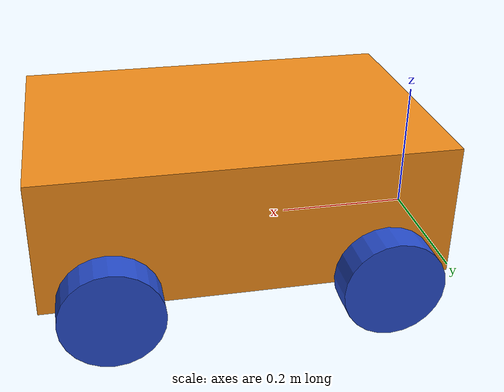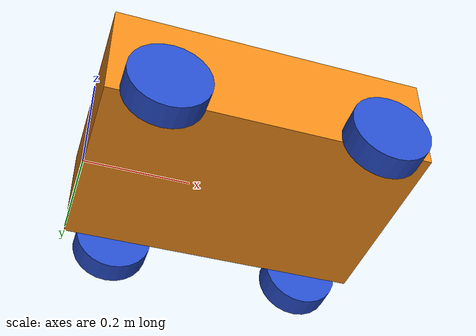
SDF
<sdf version='1.11'>
  <model name='robot'>
    <link name='base_link'>
      <inertial>
        <pose>0.29999999999999999 0 0.090000000000000011 0 0 0</pose>
        <mass>0.5</mass>
        <inertia>
          <ixx>0.008333333333333335</ixx>
          <ixy>0</ixy>
          <ixz>0</ixz>
          <iyy>0.016666666666666659</iyy>
          <iyz>0</iyz>
          <izz>0.021666666666666671</izz>
        </inertia>
      </inertial>
      <collision name='base_link_fixed_joint_lump__chassis_collision'>
        <pose>0.29999999999999999 0 0.090000000000000011 0 0 0</pose>
        <geometry>
          <box>
            <size>0.59999999999999998 0.40000000000000002 0.20000000000000001</size>
          </box>
        </geometry>
        <surface>
          <contact>
            <ode/>
          </contact>
          <friction>
            <ode/>
          </friction>
        </surface>
      </collision>
      <visual name='base_link_fixed_joint_lump__chassis_visual'>
        <pose>0.29999999999999999 0 0.090000000000000011 0 0 0</pose>
        <geometry>
          <box>
            <size>0.59999999999999998 0.40000000000000002 0.20000000000000001</size>
          </box>
        </geometry>
        <material>
          <script>
            <name>Gazebo/Orange</name>
            <uri>file://media/materials/scripts/gazebo.material</uri>
          </script>
          <diffuse>1 0.37500003 0.125 1</diffuse>
          <ambient>1 0.37500003 0.125 1</ambient>
        </material>
      </visual>
    </link>
    <joint name='front_left_wheel_joint' type='revolute'>
      <pose relative_to='base_link'>0.5 0.22500000000000001 0 -1.5707963267948959 0 0</pose>
      <parent>base_link</parent>
      <child>front_left_wheel</child>
      <axis>
        <xyz>0 0 1</xyz>
        <limit>
          <lower>-inf</lower>
          <upper>inf</upper>
        </limit>
        <dynamics>
          <spring_reference>0</spring_reference>
          <spring_stiffness>0</spring_stiffness>
        </dynamics>
      </axis>
    </joint>
    <link name='front_left_wheel'>
      <pose relative_to='front_left_wheel_joint'>0 0 0 0 0 0</pose>
      <inertial>
        <pose>0 0 0 0 0 0</pose>
        <mass>0.050000000000000003</mass>
        <inertia>
          <ixx>8.0729166666666653e-05</ixx>
          <ixy>0</ixy>
          <ixz>0</ixz>
          <iyy>8.0729166666666653e-05</iyy>
          <iyz>0</iyz>
          <izz>0.00014062499999999999</izz>
        </inertia>
      </inertial>
      <collision name='front_left_wheel_collision'>
        <pose>0 0 0 0 0 0</pose>
        <geometry>
          <sphere>
            <radius>0.074999999999999997</radius>
          </sphere>
        </geometry>
        <surface>
          <contact>
            <ode/>
          </contact>
          <friction>
            <ode/>
          </friction>
        </surface>
      </collision>
      <visual name='front_left_wheel_visual'>
        <pose>0 0 0 0 0 0</pose>
        <geometry>
          <cylinder>
            <length>0.050000000000000003</length>
            <radius>0.074999999999999997</radius>
          </cylinder>
        </geometry>
        <material>
          <script>
            <name>Gazebo/Blue</name>
            <uri>file://media/materials/scripts/gazebo.material</uri>
          </script>
          <diffuse>0.25 0.25 1 1</diffuse>
          <ambient>0.25 0.25 1 1</ambient>
        </material>
      </visual>
    </link>
    <joint name='front_right_wheel_joint' type='revolute'>
      <pose relative_to='base_link'>0.5 -0.22500000000000001 0 1.5707963267948959 0 0</pose>
      <parent>base_link</parent>
      <child>front_right_wheel</child>
      <axis>
        <xyz>0 0 1</xyz>
        <limit>
          <lower>-inf</lower>
          <upper>inf</upper>
        </limit>
        <dynamics>
          <spring_reference>0</spring_reference>
          <spring_stiffness>0</spring_stiffness>
        </dynamics>
      </axis>
    </joint>
    <link name='front_right_wheel'>
      <pose relative_to='front_right_wheel_joint'>0 0 0 0 0 0</pose>
      <inertial>
        <pose>0 0 0 0 0 0</pose>
        <mass>0.050000000000000003</mass>
        <inertia>
          <ixx>8.0729166666666653e-05</ixx>
          <ixy>0</ixy>
          <ixz>0</ixz>
          <iyy>8.0729166666666653e-05</iyy>
          <iyz>0</iyz>
          <izz>0.00014062499999999999</izz>
        </inertia>
      </inertial>
      <collision name='front_right_wheel_collision'>
        <pose>0 0 0 0 0 0</pose>
        <geometry>
          <sphere>
            <radius>0.074999999999999997</radius>
          </sphere>
        </geometry>
        <surface>
          <contact>
            <ode/>
          </contact>
          <friction>
            <ode/>
          </friction>
        </surface>
      </collision>
      <visual name='front_right_wheel_visual'>
        <pose>0 0 0 0 0 0</pose>
        <geometry>
          <cylinder>
            <length>0.050000000000000003</length>
            <radius>0.074999999999999997</radius>
          </cylinder>
        </geometry>
        <material>
          <script>
            <name>Gazebo/Blue</name>
            <uri>file://media/materials/scripts/gazebo.material</uri>
          </script>
          <diffuse>0.25 0.25 1 1</diffuse>
          <ambient>0.25 0.25 1 1</ambient>
        </material>
      </visual>
    </link>
    <joint name='rear_left_wheel_joint' type='revolute'>
      <pose relative_to='base_link'>0.099999999999999978 0.22500000000000001 0 -1.5707963267948959 0 0</pose>
      <parent>base_link</parent>
      <child>rear_left_wheel</child>
      <axis>
        <xyz>0 0 1</xyz>
        <limit>
          <lower>-inf</lower>
          <upper>inf</upper>
        </limit>
        <dynamics>
          <spring_reference>0</spring_reference>
          <spring_stiffness>0</spring_stiffness>
        </dynamics>
      </axis>
    </joint>
    <link name='rear_left_wheel'>
      <pose relative_to='rear_left_wheel_joint'>0 0 0 0 0 0</pose>
      <inertial>
        <pose>0 0 0 0 0 0</pose>
        <mass>0.050000000000000003</mass>
        <inertia>
          <ixx>8.0729166666666653e-05</ixx>
          <ixy>0</ixy>
          <ixz>0</ixz>
          <iyy>8.0729166666666653e-05</iyy>
          <iyz>0</iyz>
          <izz>0.00014062499999999999</izz>
        </inertia>
      </inertial>
      <collision name='rear_left_wheel_collision'>
        <pose>0 0 0 0 0 0</pose>
        <geometry>
          <sphere>
            <radius>0.074999999999999997</radius>
          </sphere>
        </geometry>
        <surface>
          <contact>
            <ode/>
          </contact>
          <friction>
            <ode/>
          </friction>
        </surface>
      </collision>
      <visual name='rear_left_wheel_visual'>
        <pose>0 0 0 0 0 0</pose>
        <geometry>
          <cylinder>
            <length>0.050000000000000003</length>
            <radius>0.074999999999999997</radius>
          </cylinder>
        </geometry>
        <material>
          <script>
            <name>Gazebo/Blue</name>
            <uri>file://media/materials/scripts/gazebo.material</uri>
          </script>
          <diffuse>0.25 0.25 1 1</diffuse>
          <ambient>0.25 0.25 1 1</ambient>
        </material>
      </visual>
    </link>
    <joint name='rear_right_wheel_joint' type='revolute'>
      <pose relative_to='base_link'>0.099999999999999978 -0.22500000000000001 0 1.5707963267948959 0 0</pose>
      <parent>base_link</parent>
      <child>rear_right_wheel</child>
      <axis>
        <xyz>0 0 1</xyz>
        <limit>
          <lower>-inf</lower>
          <upper>inf</upper>
        </limit>
        <dynamics>
          <spring_reference>0</spring_reference>
          <spring_stiffness>0</spring_stiffness>
        </dynamics>
      </axis>
    </joint>
    <link name='rear_right_wheel'>
      <pose relative_to='rear_right_wheel_joint'>0 0 0 0 0 0</pose>
      <inertial>
        <pose>0 0 0 0 0 0</pose>
        <mass>0.050000000000000003</mass>
        <inertia>
          <ixx>8.0729166666666653e-05</ixx>
          <ixy>0</ixy>
          <ixz>0</ixz>
          <iyy>8.0729166666666653e-05</iyy>
          <iyz>0</iyz>
          <izz>0.00014062499999999999</izz>
        </inertia>
      </inertial>
      <collision name='rear_right_wheel_collision'>
        <pose>0 0 0 0 0 0</pose>
        <geometry>
          <sphere>
            <radius>0.074999999999999997</radius>
          </sphere>
        </geometry>
        <surface>
          <contact>
            <ode/>
          </contact>
          <friction>
            <ode/>
          </friction>
        </surface>
      </collision>
      <visual name='rear_right_wheel_visual'>
        <pose>0 0 0 0 0 0</pose>
        <geometry>
          <cylinder>
            <length>0.050000000000000003</length>
            <radius>0.074999999999999997</radius>
          </cylinder>
        </geometry>
        <material>
          <script>
            <name>Gazebo/Blue</name>
            <uri>file://media/materials/scripts/gazebo.material</uri>
          </script>
          <diffuse>0.25 0.25 1 1</diffuse>
          <ambient>0.25 0.25 1 1</ambient>
        </material>
      </visual>
    </link>
    <plugin name='gz::sim::systems::DiffDrive' filename='gz-sim-diff-drive-system'>
      <topic>cmd_vel</topic>
      <child_frame_id>base_footprint</child_frame_id>
      <odom_topic>odom/unfiltered</odom_topic>
      <left_joint>rear_left_wheel_joint</left_joint>
      <right_joint>rear_right_wheel_joint</right_joint>
      <wheel_separation>0.45</wheel_separation>
      <wheel_radius>0.075</wheel_radius>
      <max_linear_acceleration>1</max_linear_acceleration>
      <min_linear_acceleration>-1</min_linear_acceleration>
      <max_angular_acceleration>2</max_angular_acceleration>
      <min_angular_acceleration>-2</min_angular_acceleration>
      <max_linear_velocity>0.5</max_linear_velocity>
      <min_linear_velocity>-0.5</min_linear_velocity>
      <max_angular_velocity>1</max_angular_velocity>
      <min_angular_velocity>-1</min_angular_velocity>
    </plugin>
    <frame name='base_footprint_joint' attached_to='base_link'>
      <pose>0 0 0 0 0 0</pose>
    </frame>
    <frame name='base_footprint' attached_to='base_footprint_joint'>
      <pose>0 0 0 0 0 0</pose>
    </frame>
    <frame name='chassis_joint' attached_to='base_link'>
      <pose>0 0 -0.01 0 0 0</pose>
    </frame>
    <frame name='chassis' attached_to='chassis_joint'>
      <pose>0 0 0 0 0 0</pose>
    </frame>
  </model>
</sdf>
